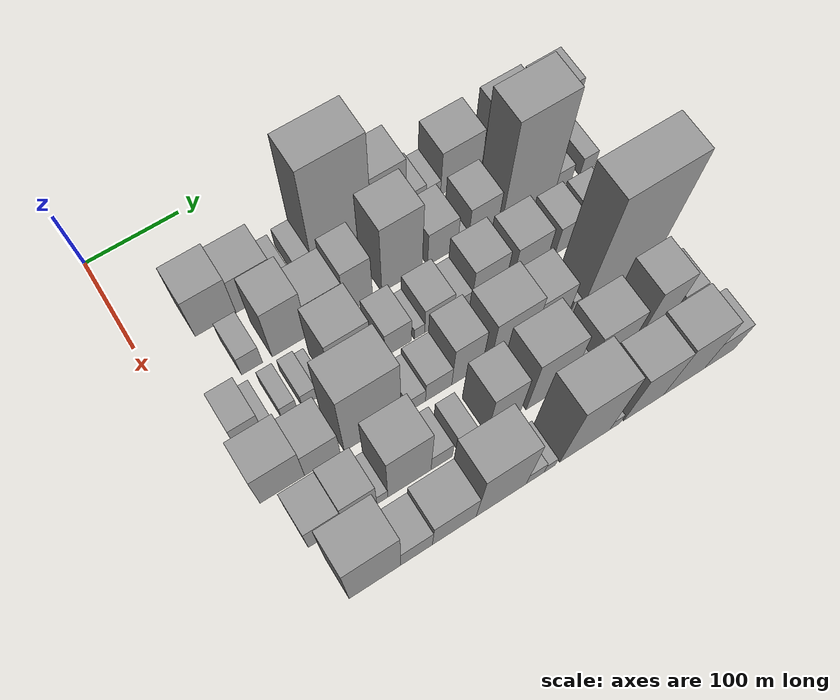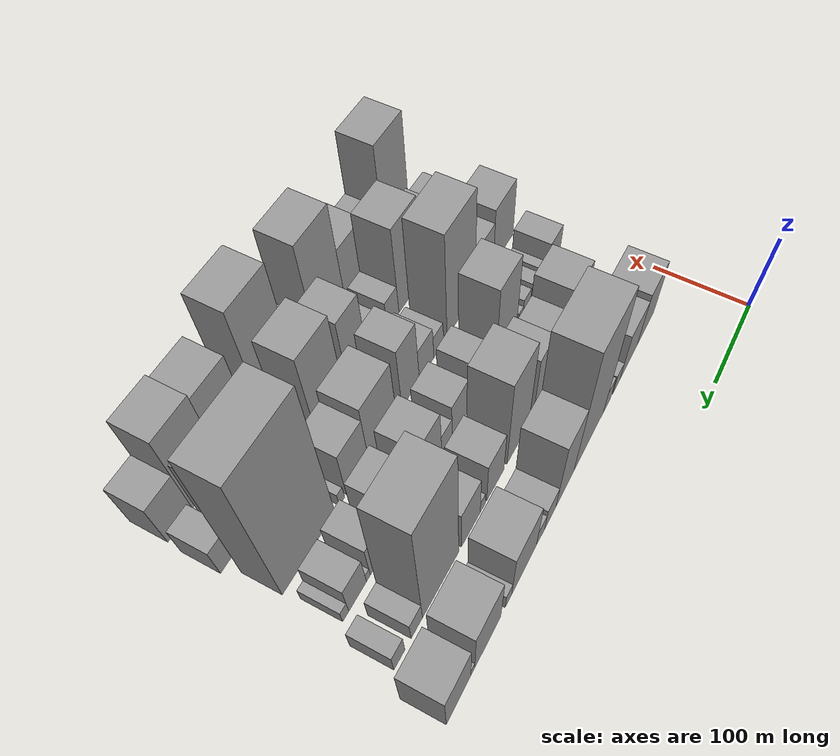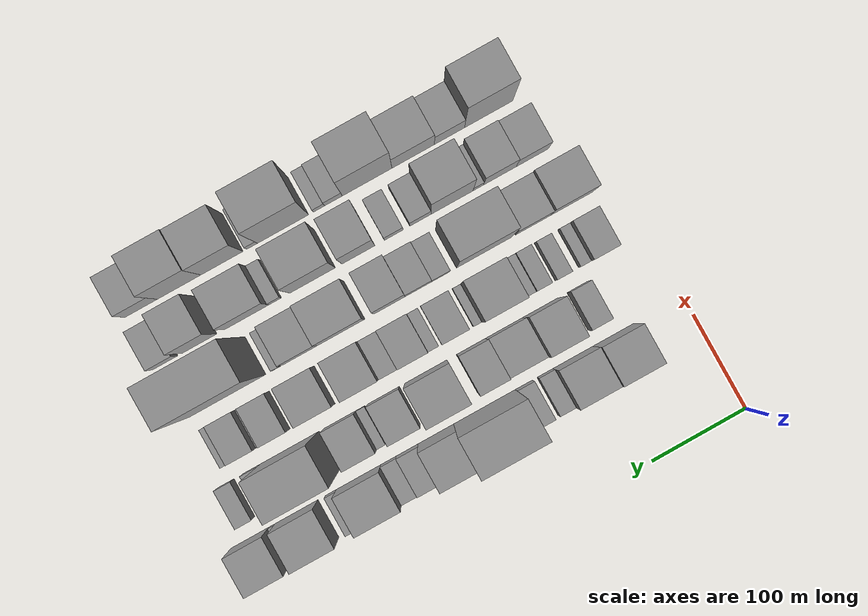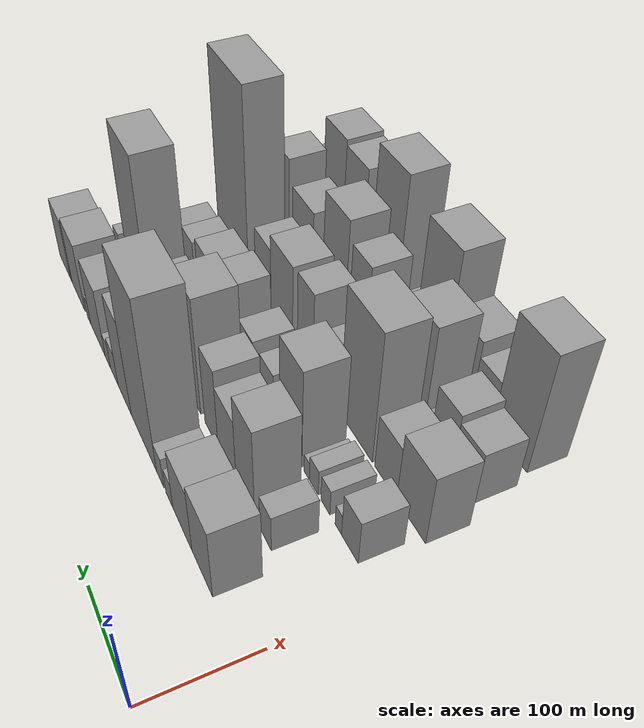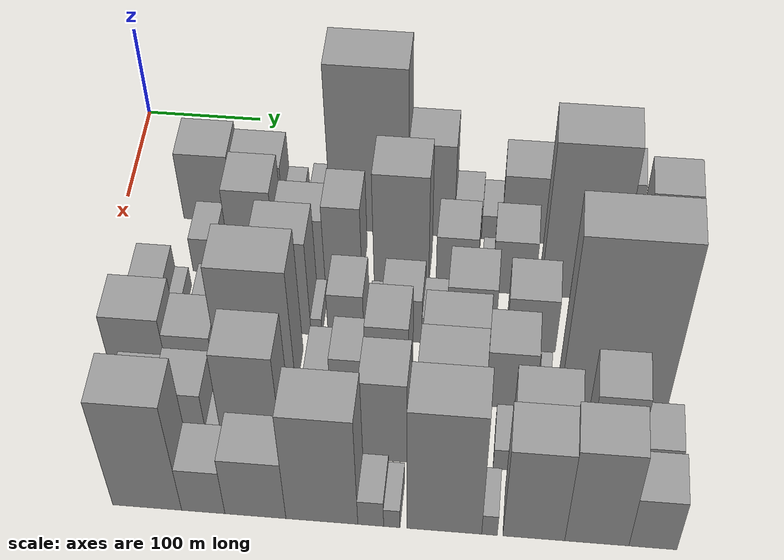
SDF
<sdf version="1.6">
 <world name="default">
  <model name="building_24">
   <static>1</static>
   <pose>100.0000 74.4396 0 0.000000 0.000000 0.000000</pose>
   <link name="link">
    <pose>0 0 40.50 0 0 0</pose>
    <collision name="collision"><geometry><box><size>40.0000 42.9403 81.0000</size></box></geometry></collision>
    <visual name="visual">
     <cast_shadows>0</cast_shadows>
     <geometry><box><size>40.0000 42.9403 81.0000</size></box></geometry>
     <material>
      <script>
       <uri>model://grey_wall/materials/scripts</uri>
       <uri>model://grey_wall/materials/textures</uri>
       <name>vrc/grey_wall</name>
      </script>
     </material>
    </visual>
   </link>
  </model>
  <model name="building_25">
   <static>1</static>
   <pose>100.0000 117.2887 0 0.000000 0.000000 0.000000</pose>
   <link name="link">
    <pose>0 0 36.00 0 0 0</pose>
    <collision name="collision"><geometry><box><size>40.0000 42.7581 72.0000</size></box></geometry></collision>
    <visual name="visual">
     <cast_shadows>0</cast_shadows>
     <geometry><box><size>40.0000 42.7581 72.0000</size></box></geometry>
     <material>
      <script>
       <uri>model://grey_wall/materials/scripts</uri>
       <uri>model://grey_wall/materials/textures</uri>
       <name>vrc/grey_wall</name>
      </script>
     </material>
    </visual>
   </link>
  </model>
  <model name="building_26">
   <static>1</static>
   <pose>100.0000 146.9715 0 0.000000 0.000000 0.000000</pose>
   <link name="link">
    <pose>0 0 15.00 0 0 0</pose>
    <collision name="collision"><geometry><box><size>40.0000 16.6075 30.0000</size></box></geometry></collision>
    <visual name="visual">
     <cast_shadows>0</cast_shadows>
     <geometry><box><size>40.0000 16.6075 30.0000</size></box></geometry>
     <material>
      <script>
       <uri>model://grey_wall/materials/scripts</uri>
       <uri>model://grey_wall/materials/textures</uri>
       <name>vrc/grey_wall</name>
      </script>
     </material>
    </visual>
   </link>
  </model>
  <model name="building_27">
   <static>1</static>
   <pose>100.0000 169.2999 0 0.000000 0.000000 0.000000</pose>
   <link name="link">
    <pose>0 0 18.00 0 0 0</pose>
    <collision name="collision"><geometry><box><size>40.0000 18.0493 36.0000</size></box></geometry></collision>
    <visual name="visual">
     <cast_shadows>0</cast_shadows>
     <geometry><box><size>40.0000 18.0493 36.0000</size></box></geometry>
     <material>
      <script>
       <uri>model://grey_wall/materials/scripts</uri>
       <uri>model://grey_wall/materials/textures</uri>
       <name>vrc/grey_wall</name>
      </script>
     </material>
    </visual>
   </link>
  </model>
  <model name="building_28">
   <static>1</static>
   <pose>100.0000 211.1221 0 0.000000 0.000000 0.000000</pose>
   <link name="link">
    <pose>0 0 96.00 0 0 0</pose>
    <collision name="collision"><geometry><box><size>40.0000 65.5950 192.0000</size></box></geometry></collision>
    <visual name="visual">
     <cast_shadows>0</cast_shadows>
     <geometry><box><size>40.0000 65.5950 192.0000</size></box></geometry>
     <material>
      <script>
       <uri>model://grey_wall/materials/scripts</uri>
       <uri>model://grey_wall/materials/textures</uri>
       <name>vrc/grey_wall</name>
      </script>
     </material>
    </visual>
   </link>
  </model>
  <model name="building_29">
   <static>1</static>
   <pose>100.0000 262.9769 0 0.000000 0.000000 0.000000</pose>
   <link name="link">
    <pose>0 0 55.50 0 0 0</pose>
    <collision name="collision"><geometry><box><size>40.0000 38.1147 111.0000</size></box></geometry></collision>
    <visual name="visual">
     <cast_shadows>0</cast_shadows>
     <geometry><box><size>40.0000 38.1147 111.0000</size></box></geometry>
     <material>
      <script>
       <uri>model://grey_wall/materials/scripts</uri>
       <uri>model://grey_wall/materials/textures</uri>
       <name>vrc/grey_wall</name>
      </script>
     </material>
    </visual>
   </link>
  </model>
  <model name="building_30">
   <static>1</static>
   <pose>100.0000 293.4350 0 0.000000 0.000000 0.000000</pose>
   <link name="link">
    <pose>0 0 19.50 0 0 0</pose>
    <collision name="collision"><geometry><box><size>40.0000 22.8015 39.0000</size></box></geometry></collision>
    <visual name="visual">
     <cast_shadows>0</cast_shadows>
     <geometry><box><size>40.0000 22.8015 39.0000</size></box></geometry>
     <material>
      <script>
       <uri>model://grey_wall/materials/scripts</uri>
       <uri>model://grey_wall/materials/textures</uri>
       <name>vrc/grey_wall</name>
      </script>
     </material>
    </visual>
   </link>
  </model>
  <model name="building_31">
   <static>1</static>
   <pose>100.0000 313.0862 0 0.000000 0.000000 0.000000</pose>
   <link name="link">
    <pose>0 0 15.00 0 0 0</pose>
    <collision name="collision"><geometry><box><size>40.0000 16.5010 30.0000</size></box></geometry></collision>
    <visual name="visual">
     <cast_shadows>0</cast_shadows>
     <geometry><box><size>40.0000 16.5010 30.0000</size></box></geometry>
     <material>
      <script>
       <uri>model://grey_wall/materials/scripts</uri>
       <uri>model://grey_wall/materials/textures</uri>
       <name>vrc/grey_wall</name>
      </script>
     </material>
    </visual>
   </link>
  </model>
  <model name="building_32">
   <static>1</static>
   <pose>100.0000 344.8873 0 0.000000 0.000000 0.000000</pose>
   <link name="link">
    <pose>0 0 40.50 0 0 0</pose>
    <collision name="collision"><geometry><box><size>40.0000 47.1013 81.0000</size></box></geometry></collision>
    <visual name="visual">
     <cast_shadows>0</cast_shadows>
     <geometry><box><size>40.0000 47.1013 81.0000</size></box></geometry>
     <material>
      <script>
       <uri>model://grey_wall/materials/scripts</uri>
       <uri>model://grey_wall/materials/textures</uri>
       <name>vrc/grey_wall</name>
      </script>
     </material>
    </visual>
   </link>
  </model>
  <model name="building_33">
   <static>1</static>
   <pose>100.0000 374.2250 0 0.000000 0.000000 0.000000</pose>
   <link name="link">
    <pose>0 0 13.50 0 0 0</pose>
    <collision name="collision"><geometry><box><size>40.0000 11.5741 27.0000</size></box></geometry></collision>
    <visual name="visual">
     <cast_shadows>0</cast_shadows>
     <geometry><box><size>40.0000 11.5741 27.0000</size></box></geometry>
     <material>
      <script>
       <uri>model://grey_wall/materials/scripts</uri>
       <uri>model://grey_wall/materials/textures</uri>
       <name>vrc/grey_wall</name>
      </script>
     </material>
    </visual>
   </link>
  </model>
  <model name="building_34">
   <static>1</static>
   <pose>100.0000 410.7948 0 0.000000 0.000000 0.000000</pose>
   <link name="link">
    <pose>0 0 40.50 0 0 0</pose>
    <collision name="collision"><geometry><box><size>40.0000 45.5656 81.0000</size></box></geometry></collision>
    <visual name="visual">
     <cast_shadows>0</cast_shadows>
     <geometry><box><size>40.0000 45.5656 81.0000</size></box></geometry>
     <material>
      <script>
       <uri>model://grey_wall/materials/scripts</uri>
       <uri>model://grey_wall/materials/textures</uri>
       <name>vrc/grey_wall</name>
      </script>
     </material>
    </visual>
   </link>
  </model>
  <model name="building_35">
   <static>1</static>
   <pose>100.0000 436.9361 0 0.000000 0.000000 0.000000</pose>
   <link name="link">
    <pose>0 0 7.50 0 0 0</pose>
    <collision name="collision"><geometry><box><size>40.0000 6.7169 15.0000</size></box></geometry></collision>
    <visual name="visual">
     <cast_shadows>0</cast_shadows>
     <geometry><box><size>40.0000 6.7169 15.0000</size></box></geometry>
     <material>
      <script>
       <uri>model://grey_wall/materials/scripts</uri>
       <uri>model://grey_wall/materials/textures</uri>
       <name>vrc/grey_wall</name>
      </script>
     </material>
    </visual>
   </link>
  </model>
  <model name="building_36">
   <static>1</static>
   <pose>100.0000 460.3819 0 0.000000 0.000000 0.000000</pose>
   <link name="link">
    <pose>0 0 36.00 0 0 0</pose>
    <collision name="collision"><geometry><box><size>40.0000 40.1748 72.0000</size></box></geometry></collision>
    <visual name="visual">
     <cast_shadows>0</cast_shadows>
     <geometry><box><size>40.0000 40.1748 72.0000</size></box></geometry>
     <material>
      <script>
       <uri>model://grey_wall/materials/scripts</uri>
       <uri>model://grey_wall/materials/textures</uri>
       <name>vrc/grey_wall</name>
      </script>
     </material>
    </visual>
   </link>
  </model>
  <model name="building_74">
   <static>1</static>
   <pose>155.0000 81.6243 0 0.000000 0.000000 0.000000</pose>
   <link name="link">
    <pose>0 0 21.00 0 0 0</pose>
    <collision name="collision"><geometry><box><size>40.0000 21.9709 42.0000</size></box></geometry></collision>
    <visual name="visual">
     <cast_shadows>0</cast_shadows>
     <geometry><box><size>40.0000 21.9709 42.0000</size></box></geometry>
     <material>
      <script>
       <uri>model://grey_wall/materials/scripts</uri>
       <uri>model://grey_wall/materials/textures</uri>
       <name>vrc/grey_wall</name>
      </script>
     </material>
    </visual>
   </link>
  </model>
  <model name="building_75">
   <static>1</static>
   <pose>155.0000 121.5219 0 0.000000 0.000000 0.000000</pose>
   <link name="link">
    <pose>0 0 52.50 0 0 0</pose>
    <collision name="collision"><geometry><box><size>40.0000 37.8243 105.0000</size></box></geometry></collision>
    <visual name="visual">
     <cast_shadows>0</cast_shadows>
     <geometry><box><size>40.0000 37.8243 105.0000</size></box></geometry>
     <material>
      <script>
       <uri>model://grey_wall/materials/scripts</uri>
       <uri>model://grey_wall/materials/textures</uri>
       <name>vrc/grey_wall</name>
      </script>
     </material>
    </visual>
   </link>
  </model>
  <model name="building_76">
   <static>1</static>
   <pose>155.0000 160.1553 0 0.000000 0.000000 0.000000</pose>
   <link name="link">
    <pose>0 0 37.50 0 0 0</pose>
    <collision name="collision"><geometry><box><size>40.0000 39.4426 75.0000</size></box></geometry></collision>
    <visual name="visual">
     <cast_shadows>0</cast_shadows>
     <geometry><box><size>40.0000 39.4426 75.0000</size></box></geometry>
     <material>
      <script>
       <uri>model://grey_wall/materials/scripts</uri>
       <uri>model://grey_wall/materials/textures</uri>
       <name>vrc/grey_wall</name>
      </script>
     </material>
    </visual>
   </link>
  </model>
  <model name="building_77">
   <static>1</static>
   <pose>155.0000 195.1086 0 0.000000 0.000000 0.000000</pose>
   <link name="link">
    <pose>0 0 46.50 0 0 0</pose>
    <collision name="collision"><geometry><box><size>40.0000 30.4640 93.0000</size></box></geometry></collision>
    <visual name="visual">
     <cast_shadows>0</cast_shadows>
     <geometry><box><size>40.0000 30.4640 93.0000</size></box></geometry>
     <material>
      <script>
       <uri>model://grey_wall/materials/scripts</uri>
       <uri>model://grey_wall/materials/textures</uri>
       <name>vrc/grey_wall</name>
      </script>
     </material>
    </visual>
   </link>
  </model>
  <model name="building_78">
   <static>1</static>
   <pose>155.0000 242.6179 0 0.000000 0.000000 0.000000</pose>
   <link name="link">
    <pose>0 0 67.50 0 0 0</pose>
    <collision name="collision"><geometry><box><size>40.0000 44.5544 135.0000</size></box></geometry></collision>
    <visual name="visual">
     <cast_shadows>0</cast_shadows>
     <geometry><box><size>40.0000 44.5544 135.0000</size></box></geometry>
     <material>
      <script>
       <uri>model://grey_wall/materials/scripts</uri>
       <uri>model://grey_wall/materials/textures</uri>
       <name>vrc/grey_wall</name>
      </script>
     </material>
    </visual>
   </link>
  </model>
  <model name="building_79">
   <static>1</static>
   <pose>155.0000 287.6054 0 0.000000 0.000000 0.000000</pose>
   <link name="link">
    <pose>0 0 33.00 0 0 0</pose>
    <collision name="collision"><geometry><box><size>40.0000 33.4206 66.0000</size></box></geometry></collision>
    <visual name="visual">
     <cast_shadows>0</cast_shadows>
     <geometry><box><size>40.0000 33.4206 66.0000</size></box></geometry>
     <material>
      <script>
       <uri>model://grey_wall/materials/scripts</uri>
       <uri>model://grey_wall/materials/textures</uri>
       <name>vrc/grey_wall</name>
      </script>
     </material>
    </visual>
   </link>
  </model>
  <model name="building_80">
   <static>1</static>
   <pose>155.0000 311.9925 0 0.000000 0.000000 0.000000</pose>
   <link name="link">
    <pose>0 0 10.50 0 0 0</pose>
    <collision name="collision"><geometry><box><size>40.0000 9.3537 21.0000</size></box></geometry></collision>
    <visual name="visual">
     <cast_shadows>0</cast_shadows>
     <geometry><box><size>40.0000 9.3537 21.0000</size></box></geometry>
     <material>
      <script>
       <uri>model://grey_wall/materials/scripts</uri>
       <uri>model://grey_wall/materials/textures</uri>
       <name>vrc/grey_wall</name>
      </script>
     </material>
    </visual>
   </link>
  </model>
  <model name="building_81">
   <static>1</static>
   <pose>155.0000 333.8412 0 0.000000 0.000000 0.000000</pose>
   <link name="link">
    <pose>0 0 33.00 0 0 0</pose>
    <collision name="collision"><geometry><box><size>40.0000 34.3437 66.0000</size></box></geometry></collision>
    <visual name="visual">
     <cast_shadows>0</cast_shadows>
     <geometry><box><size>40.0000 34.3437 66.0000</size></box></geometry>
     <material>
      <script>
       <uri>model://grey_wall/materials/scripts</uri>
       <uri>model://grey_wall/materials/textures</uri>
       <name>vrc/grey_wall</name>
      </script>
     </material>
    </visual>
   </link>
  </model>
  <model name="building_82">
   <static>1</static>
   <pose>155.0000 387.0578 0 0.000000 0.000000 0.000000</pose>
   <link name="link">
    <pose>0 0 91.50 0 0 0</pose>
    <collision name="collision"><geometry><box><size>40.0000 62.0895 183.0000</size></box></geometry></collision>
    <visual name="visual">
     <cast_shadows>0</cast_shadows>
     <geometry><box><size>40.0000 62.0895 183.0000</size></box></geometry>
     <material>
      <script>
       <uri>model://grey_wall/materials/scripts</uri>
       <uri>model://grey_wall/materials/textures</uri>
       <name>vrc/grey_wall</name>
      </script>
     </material>
    </visual>
   </link>
  </model>
  <model name="building_83">
   <static>1</static>
   <pose>155.0000 427.3714 0 0.000000 0.000000 0.000000</pose>
   <link name="link">
    <pose>0 0 16.50 0 0 0</pose>
    <collision name="collision"><geometry><box><size>40.0000 18.5377 33.0000</size></box></geometry></collision>
    <visual name="visual">
     <cast_shadows>0</cast_shadows>
     <geometry><box><size>40.0000 18.5377 33.0000</size></box></geometry>
     <material>
      <script>
       <uri>model://grey_wall/materials/scripts</uri>
       <uri>model://grey_wall/materials/textures</uri>
       <name>vrc/grey_wall</name>
      </script>
     </material>
    </visual>
   </link>
  </model>
  <model name="building_84">
   <static>1</static>
   <pose>155.0000 455.3197 0 0.000000 0.000000 0.000000</pose>
   <link name="link">
    <pose>0 0 16.50 0 0 0</pose>
    <collision name="collision"><geometry><box><size>40.0000 17.3588 33.0000</size></box></geometry></collision>
    <visual name="visual">
     <cast_shadows>0</cast_shadows>
     <geometry><box><size>40.0000 17.3588 33.0000</size></box></geometry>
     <material>
      <script>
       <uri>model://grey_wall/materials/scripts</uri>
       <uri>model://grey_wall/materials/textures</uri>
       <name>vrc/grey_wall</name>
      </script>
     </material>
    </visual>
   </link>
  </model>
  <model name="building_124">
   <static>1</static>
   <pose>210.0000 47.0669 0 0.000000 0.000000 0.000000</pose>
   <link name="link">
    <pose>0 0 25.50 0 0 0</pose>
    <collision name="collision"><geometry><box><size>40.0000 27.5567 51.0000</size></box></geometry></collision>
    <visual name="visual">
     <cast_shadows>0</cast_shadows>
     <geometry><box><size>40.0000 27.5567 51.0000</size></box></geometry>
     <material>
      <script>
       <uri>model://grey_wall/materials/scripts</uri>
       <uri>model://grey_wall/materials/textures</uri>
       <name>vrc/grey_wall</name>
      </script>
     </material>
    </visual>
   </link>
  </model>
  <model name="building_125">
   <static>1</static>
   <pose>210.0000 66.3693 0 0.000000 0.000000 0.000000</pose>
   <link name="link">
    <pose>0 0 12.00 0 0 0</pose>
    <collision name="collision"><geometry><box><size>40.0000 11.0480 24.0000</size></box></geometry></collision>
    <visual name="visual">
     <cast_shadows>0</cast_shadows>
     <geometry><box><size>40.0000 11.0480 24.0000</size></box></geometry>
     <material>
      <script>
       <uri>model://grey_wall/materials/scripts</uri>
       <uri>model://grey_wall/materials/textures</uri>
       <name>vrc/grey_wall</name>
      </script>
     </material>
    </visual>
   </link>
  </model>
  <model name="building_126">
   <static>1</static>
   <pose>210.0000 88.8799 0 0.000000 0.000000 0.000000</pose>
   <link name="link">
    <pose>0 0 15.00 0 0 0</pose>
    <collision name="collision"><geometry><box><size>40.0000 15.9732 30.0000</size></box></geometry></collision>
    <visual name="visual">
     <cast_shadows>0</cast_shadows>
     <geometry><box><size>40.0000 15.9732 30.0000</size></box></geometry>
     <material>
      <script>
       <uri>model://grey_wall/materials/scripts</uri>
       <uri>model://grey_wall/materials/textures</uri>
       <name>vrc/grey_wall</name>
      </script>
     </material>
    </visual>
   </link>
  </model>
  <model name="building_127">
   <static>1</static>
   <pose>210.0000 109.9628 0 0.000000 0.000000 0.000000</pose>
   <link name="link">
    <pose>0 0 15.00 0 0 0</pose>
    <collision name="collision"><geometry><box><size>40.0000 16.1927 30.0000</size></box></geometry></collision>
    <visual name="visual">
     <cast_shadows>0</cast_shadows>
     <geometry><box><size>40.0000 16.1927 30.0000</size></box></geometry>
     <material>
      <script>
       <uri>model://grey_wall/materials/scripts</uri>
       <uri>model://grey_wall/materials/textures</uri>
       <name>vrc/grey_wall</name>
      </script>
     </material>
    </visual>
   </link>
  </model>
  <model name="building_128">
   <static>1</static>
   <pose>210.0000 123.2397 0 0.000000 0.000000 0.000000</pose>
   <link name="link">
    <pose>0 0 10.50 0 0 0</pose>
    <collision name="collision"><geometry><box><size>40.0000 10.3610 21.0000</size></box></geometry></collision>
    <visual name="visual">
     <cast_shadows>0</cast_shadows>
     <geometry><box><size>40.0000 10.3610 21.0000</size></box></geometry>
     <material>
      <script>
       <uri>model://grey_wall/materials/scripts</uri>
       <uri>model://grey_wall/materials/textures</uri>
       <name>vrc/grey_wall</name>
      </script>
     </material>
    </visual>
   </link>
  </model>
  <model name="building_129">
   <static>1</static>
   <pose>210.0000 153.9851 0 0.000000 0.000000 0.000000</pose>
   <link name="link">
    <pose>0 0 57.00 0 0 0</pose>
    <collision name="collision"><geometry><box><size>40.0000 43.1299 114.0000</size></box></geometry></collision>
    <visual name="visual">
     <cast_shadows>0</cast_shadows>
     <geometry><box><size>40.0000 43.1299 114.0000</size></box></geometry>
     <material>
      <script>
       <uri>model://grey_wall/materials/scripts</uri>
       <uri>model://grey_wall/materials/textures</uri>
       <name>vrc/grey_wall</name>
      </script>
     </material>
    </visual>
   </link>
  </model>
  <model name="building_130">
   <static>1</static>
   <pose>210.0000 179.8836 0 0.000000 0.000000 0.000000</pose>
   <link name="link">
    <pose>0 0 10.50 0 0 0</pose>
    <collision name="collision"><geometry><box><size>40.0000 8.6671 21.0000</size></box></geometry></collision>
    <visual name="visual">
     <cast_shadows>0</cast_shadows>
     <geometry><box><size>40.0000 8.6671 21.0000</size></box></geometry>
     <material>
      <script>
       <uri>model://grey_wall/materials/scripts</uri>
       <uri>model://grey_wall/materials/textures</uri>
       <name>vrc/grey_wall</name>
      </script>
     </material>
    </visual>
   </link>
  </model>
  <model name="building_131">
   <static>1</static>
   <pose>210.0000 203.4865 0 0.000000 0.000000 0.000000</pose>
   <link name="link">
    <pose>0 0 27.00 0 0 0</pose>
    <collision name="collision"><geometry><box><size>40.0000 28.5387 54.0000</size></box></geometry></collision>
    <visual name="visual">
     <cast_shadows>0</cast_shadows>
     <geometry><box><size>40.0000 28.5387 54.0000</size></box></geometry>
     <material>
      <script>
       <uri>model://grey_wall/materials/scripts</uri>
       <uri>model://grey_wall/materials/textures</uri>
       <name>vrc/grey_wall</name>
      </script>
     </material>
    </visual>
   </link>
  </model>
  <model name="building_132">
   <static>1</static>
   <pose>210.0000 226.4200 0 0.000000 0.000000 0.000000</pose>
   <link name="link">
    <pose>0 0 12.00 0 0 0</pose>
    <collision name="collision"><geometry><box><size>40.0000 11.3285 24.0000</size></box></geometry></collision>
    <visual name="visual">
     <cast_shadows>0</cast_shadows>
     <geometry><box><size>40.0000 11.3285 24.0000</size></box></geometry>
     <material>
      <script>
       <uri>model://grey_wall/materials/scripts</uri>
       <uri>model://grey_wall/materials/textures</uri>
       <name>vrc/grey_wall</name>
      </script>
     </material>
    </visual>
   </link>
  </model>
  <model name="building_133">
   <static>1</static>
   <pose>210.0000 247.9528 0 0.000000 0.000000 0.000000</pose>
   <link name="link">
    <pose>0 0 27.00 0 0 0</pose>
    <collision name="collision"><geometry><box><size>40.0000 31.7370 54.0000</size></box></geometry></collision>
    <visual name="visual">
     <cast_shadows>0</cast_shadows>
     <geometry><box><size>40.0000 31.7370 54.0000</size></box></geometry>
     <material>
      <script>
       <uri>model://grey_wall/materials/scripts</uri>
       <uri>model://grey_wall/materials/textures</uri>
       <name>vrc/grey_wall</name>
      </script>
     </material>
    </visual>
   </link>
  </model>
  <model name="building_134">
   <static>1</static>
   <pose>210.0000 273.6645 0 0.000000 0.000000 0.000000</pose>
   <link name="link">
    <pose>0 0 16.50 0 0 0</pose>
    <collision name="collision"><geometry><box><size>40.0000 19.6864 33.0000</size></box></geometry></collision>
    <visual name="visual">
     <cast_shadows>0</cast_shadows>
     <geometry><box><size>40.0000 19.6864 33.0000</size></box></geometry>
     <material>
      <script>
       <uri>model://grey_wall/materials/scripts</uri>
       <uri>model://grey_wall/materials/textures</uri>
       <name>vrc/grey_wall</name>
      </script>
     </material>
    </visual>
   </link>
  </model>
  <model name="building_135">
   <static>1</static>
   <pose>210.0000 302.5723 0 0.000000 0.000000 0.000000</pose>
   <link name="link">
    <pose>0 0 37.50 0 0 0</pose>
    <collision name="collision"><geometry><box><size>40.0000 38.1293 75.0000</size></box></geometry></collision>
    <visual name="visual">
     <cast_shadows>0</cast_shadows>
     <geometry><box><size>40.0000 38.1293 75.0000</size></box></geometry>
     <material>
      <script>
       <uri>model://grey_wall/materials/scripts</uri>
       <uri>model://grey_wall/materials/textures</uri>
       <name>vrc/grey_wall</name>
      </script>
     </material>
    </visual>
   </link>
  </model>
  <model name="building_136">
   <static>1</static>
   <pose>210.0000 350.0573 0 0.000000 0.000000 0.000000</pose>
   <link name="link">
    <pose>0 0 33.00 0 0 0</pose>
    <collision name="collision"><geometry><box><size>40.0000 38.8407 66.0000</size></box></geometry></collision>
    <visual name="visual">
     <cast_shadows>0</cast_shadows>
     <geometry><box><size>40.0000 38.8407 66.0000</size></box></geometry>
     <material>
      <script>
       <uri>model://grey_wall/materials/scripts</uri>
       <uri>model://grey_wall/materials/textures</uri>
       <name>vrc/grey_wall</name>
      </script>
     </material>
    </visual>
   </link>
  </model>
  <model name="building_137">
   <static>1</static>
   <pose>210.0000 392.8397 0 0.000000 0.000000 0.000000</pose>
   <link name="link">
    <pose>0 0 27.00 0 0 0</pose>
    <collision name="collision"><geometry><box><size>40.0000 28.7243 54.0000</size></box></geometry></collision>
    <visual name="visual">
     <cast_shadows>0</cast_shadows>
     <geometry><box><size>40.0000 28.7243 54.0000</size></box></geometry>
     <material>
      <script>
       <uri>model://grey_wall/materials/scripts</uri>
       <uri>model://grey_wall/materials/textures</uri>
       <name>vrc/grey_wall</name>
      </script>
     </material>
    </visual>
   </link>
  </model>
  <model name="building_138">
   <static>1</static>
   <pose>210.0000 410.2564 0 0.000000 0.000000 0.000000</pose>
   <link name="link">
    <pose>0 0 7.50 0 0 0</pose>
    <collision name="collision"><geometry><box><size>40.0000 6.1091 15.0000</size></box></geometry></collision>
    <visual name="visual">
     <cast_shadows>0</cast_shadows>
     <geometry><box><size>40.0000 6.1091 15.0000</size></box></geometry>
     <material>
      <script>
       <uri>model://grey_wall/materials/scripts</uri>
       <uri>model://grey_wall/materials/textures</uri>
       <name>vrc/grey_wall</name>
      </script>
     </material>
    </visual>
   </link>
  </model>
  <model name="building_139">
   <static>1</static>
   <pose>210.0000 427.1745 0 0.000000 0.000000 0.000000</pose>
   <link name="link">
    <pose>0 0 24.00 0 0 0</pose>
    <collision name="collision"><geometry><box><size>40.0000 27.7270 48.0000</size></box></geometry></collision>
    <visual name="visual">
     <cast_shadows>0</cast_shadows>
     <geometry><box><size>40.0000 27.7270 48.0000</size></box></geometry>
     <material>
      <script>
       <uri>model://grey_wall/materials/scripts</uri>
       <uri>model://grey_wall/materials/textures</uri>
       <name>vrc/grey_wall</name>
      </script>
     </material>
    </visual>
   </link>
  </model>
  <model name="building_140">
   <static>1</static>
   <pose>210.0000 445.7122 0 0.000000 0.000000 0.000000</pose>
   <link name="link">
    <pose>0 0 10.50 0 0 0</pose>
    <collision name="collision"><geometry><box><size>40.0000 9.3484 21.0000</size></box></geometry></collision>
    <visual name="visual">
     <cast_shadows>0</cast_shadows>
     <geometry><box><size>40.0000 9.3484 21.0000</size></box></geometry>
     <material>
      <script>
       <uri>model://grey_wall/materials/scripts</uri>
       <uri>model://grey_wall/materials/textures</uri>
       <name>vrc/grey_wall</name>
      </script>
     </material>
    </visual>
   </link>
  </model>
  <model name="building_180">
   <static>1</static>
   <pose>265.0000 49.3287 0 0.000000 0.000000 0.000000</pose>
   <link name="link">
    <pose>0 0 40.50 0 0 0</pose>
    <collision name="collision"><geometry><box><size>40.0000 45.0041 81.0000</size></box></geometry></collision>
    <visual name="visual">
     <cast_shadows>0</cast_shadows>
     <geometry><box><size>40.0000 45.0041 81.0000</size></box></geometry>
     <material>
      <script>
       <uri>model://grey_wall/materials/scripts</uri>
       <uri>model://grey_wall/materials/textures</uri>
       <name>vrc/grey_wall</name>
      </script>
     </material>
    </visual>
   </link>
  </model>
  <model name="building_181">
   <static>1</static>
   <pose>265.0000 90.1085 0 0.000000 0.000000 0.000000</pose>
   <link name="link">
    <pose>0 0 31.50 0 0 0</pose>
    <collision name="collision"><geometry><box><size>40.0000 36.5555 63.0000</size></box></geometry></collision>
    <visual name="visual">
     <cast_shadows>0</cast_shadows>
     <geometry><box><size>40.0000 36.5555 63.0000</size></box></geometry>
     <material>
      <script>
       <uri>model://grey_wall/materials/scripts</uri>
       <uri>model://grey_wall/materials/textures</uri>
       <name>vrc/grey_wall</name>
      </script>
     </material>
    </visual>
   </link>
  </model>
  <model name="building_182">
   <static>1</static>
   <pose>265.0000 141.7088 0 0.000000 0.000000 0.000000</pose>
   <link name="link">
    <pose>0 0 75.00 0 0 0</pose>
    <collision name="collision"><geometry><box><size>40.0000 58.6450 150.0000</size></box></geometry></collision>
    <visual name="visual">
     <cast_shadows>0</cast_shadows>
     <geometry><box><size>40.0000 58.6450 150.0000</size></box></geometry>
     <material>
      <script>
       <uri>model://grey_wall/materials/scripts</uri>
       <uri>model://grey_wall/materials/textures</uri>
       <name>vrc/grey_wall</name>
      </script>
     </material>
    </visual>
   </link>
  </model>
  <model name="building_183">
   <static>1</static>
   <pose>265.0000 187.7204 0 0.000000 0.000000 0.000000</pose>
   <link name="link">
    <pose>0 0 16.50 0 0 0</pose>
    <collision name="collision"><geometry><box><size>40.0000 19.3781 33.0000</size></box></geometry></collision>
    <visual name="visual">
     <cast_shadows>0</cast_shadows>
     <geometry><box><size>40.0000 19.3781 33.0000</size></box></geometry>
     <material>
      <script>
       <uri>model://grey_wall/materials/scripts</uri>
       <uri>model://grey_wall/materials/textures</uri>
       <name>vrc/grey_wall</name>
      </script>
     </material>
    </visual>
   </link>
  </model>
  <model name="building_184">
   <static>1</static>
   <pose>265.0000 211.4178 0 0.000000 0.000000 0.000000</pose>
   <link name="link">
    <pose>0 0 24.00 0 0 0</pose>
    <collision name="collision"><geometry><box><size>40.0000 28.0167 48.0000</size></box></geometry></collision>
    <visual name="visual">
     <cast_shadows>0</cast_shadows>
     <geometry><box><size>40.0000 28.0167 48.0000</size></box></geometry>
     <material>
      <script>
       <uri>model://grey_wall/materials/scripts</uri>
       <uri>model://grey_wall/materials/textures</uri>
       <name>vrc/grey_wall</name>
      </script>
     </material>
    </visual>
   </link>
  </model>
  <model name="building_185">
   <static>1</static>
   <pose>265.0000 241.8410 0 0.000000 0.000000 0.000000</pose>
   <link name="link">
    <pose>0 0 46.50 0 0 0</pose>
    <collision name="collision"><geometry><box><size>40.0000 32.8297 93.0000</size></box></geometry></collision>
    <visual name="visual">
     <cast_shadows>0</cast_shadows>
     <geometry><box><size>40.0000 32.8297 93.0000</size></box></geometry>
     <material>
      <script>
       <uri>model://grey_wall/materials/scripts</uri>
       <uri>model://grey_wall/materials/textures</uri>
       <name>vrc/grey_wall</name>
      </script>
     </material>
    </visual>
   </link>
  </model>
  <model name="building_186">
   <static>1</static>
   <pose>265.0000 292.9318 0 0.000000 0.000000 0.000000</pose>
   <link name="link">
    <pose>0 0 45.00 0 0 0</pose>
    <collision name="collision"><geometry><box><size>40.0000 49.3520 90.0000</size></box></geometry></collision>
    <visual name="visual">
     <cast_shadows>0</cast_shadows>
     <geometry><box><size>40.0000 49.3520 90.0000</size></box></geometry>
     <material>
      <script>
       <uri>model://grey_wall/materials/scripts</uri>
       <uri>model://grey_wall/materials/textures</uri>
       <name>vrc/grey_wall</name>
      </script>
     </material>
    </visual>
   </link>
  </model>
  <model name="building_187">
   <static>1</static>
   <pose>265.0000 336.3227 0 0.000000 0.000000 0.000000</pose>
   <link name="link">
    <pose>0 0 36.00 0 0 0</pose>
    <collision name="collision"><geometry><box><size>40.0000 37.4298 72.0000</size></box></geometry></collision>
    <visual name="visual">
     <cast_shadows>0</cast_shadows>
     <geometry><box><size>40.0000 37.4298 72.0000</size></box></geometry>
     <material>
      <script>
       <uri>model://grey_wall/materials/scripts</uri>
       <uri>model://grey_wall/materials/textures</uri>
       <name>vrc/grey_wall</name>
      </script>
     </material>
    </visual>
   </link>
  </model>
  <model name="building_188">
   <static>1</static>
   <pose>265.0000 362.3041 0 0.000000 0.000000 0.000000</pose>
   <link name="link">
    <pose>0 0 10.50 0 0 0</pose>
    <collision name="collision"><geometry><box><size>40.0000 8.5330 21.0000</size></box></geometry></collision>
    <visual name="visual">
     <cast_shadows>0</cast_shadows>
     <geometry><box><size>40.0000 8.5330 21.0000</size></box></geometry>
     <material>
      <script>
       <uri>model://grey_wall/materials/scripts</uri>
       <uri>model://grey_wall/materials/textures</uri>
       <name>vrc/grey_wall</name>
      </script>
     </material>
    </visual>
   </link>
  </model>
  <model name="building_189">
   <static>1</static>
   <pose>265.0000 414.0832 0 0.000000 0.000000 0.000000</pose>
   <link name="link">
    <pose>0 0 106.50 0 0 0</pose>
    <collision name="collision"><geometry><box><size>40.0000 81.0252 213.0000</size></box></geometry></collision>
    <visual name="visual">
     <cast_shadows>0</cast_shadows>
     <geometry><box><size>40.0000 81.0252 213.0000</size></box></geometry>
     <material>
      <script>
       <uri>model://grey_wall/materials/scripts</uri>
       <uri>model://grey_wall/materials/textures</uri>
       <name>vrc/grey_wall</name>
      </script>
     </material>
    </visual>
   </link>
  </model>
  <model name="building_227">
   <static>1</static>
   <pose>320.0000 59.9531 0 0.000000 0.000000 0.000000</pose>
   <link name="link">
    <pose>0 0 30.00 0 0 0</pose>
    <collision name="collision"><geometry><box><size>40.0000 34.3044 60.0000</size></box></geometry></collision>
    <visual name="visual">
     <cast_shadows>0</cast_shadows>
     <geometry><box><size>40.0000 34.3044 60.0000</size></box></geometry>
     <material>
      <script>
       <uri>model://grey_wall/materials/scripts</uri>
       <uri>model://grey_wall/materials/textures</uri>
       <name>vrc/grey_wall</name>
      </script>
     </material>
    </visual>
   </link>
  </model>
  <model name="building_228">
   <static>1</static>
   <pose>320.0000 94.3920 0 0.000000 0.000000 0.000000</pose>
   <link name="link">
    <pose>0 0 34.50 0 0 0</pose>
    <collision name="collision"><geometry><box><size>40.0000 34.5735 69.0000</size></box></geometry></collision>
    <visual name="visual">
     <cast_shadows>0</cast_shadows>
     <geometry><box><size>40.0000 34.5735 69.0000</size></box></geometry>
     <material>
      <script>
       <uri>model://grey_wall/materials/scripts</uri>
       <uri>model://grey_wall/materials/textures</uri>
       <name>vrc/grey_wall</name>
      </script>
     </material>
    </visual>
   </link>
  </model>
  <model name="building_229">
   <static>1</static>
   <pose>320.0000 117.3488 0 0.000000 0.000000 0.000000</pose>
   <link name="link">
    <pose>0 0 13.50 0 0 0</pose>
    <collision name="collision"><geometry><box><size>40.0000 11.3402 27.0000</size></box></geometry></collision>
    <visual name="visual">
     <cast_shadows>0</cast_shadows>
     <geometry><box><size>40.0000 11.3402 27.0000</size></box></geometry>
     <material>
      <script>
       <uri>model://grey_wall/materials/scripts</uri>
       <uri>model://grey_wall/materials/textures</uri>
       <name>vrc/grey_wall</name>
      </script>
     </material>
    </visual>
   </link>
  </model>
  <model name="building_230">
   <static>1</static>
   <pose>320.0000 145.2753 0 0.000000 0.000000 0.000000</pose>
   <link name="link">
    <pose>0 0 61.50 0 0 0</pose>
    <collision name="collision"><geometry><box><size>40.0000 44.5128 123.0000</size></box></geometry></collision>
    <visual name="visual">
     <cast_shadows>0</cast_shadows>
     <geometry><box><size>40.0000 44.5128 123.0000</size></box></geometry>
     <material>
      <script>
       <uri>model://grey_wall/materials/scripts</uri>
       <uri>model://grey_wall/materials/textures</uri>
       <name>vrc/grey_wall</name>
      </script>
     </material>
    </visual>
   </link>
  </model>
  <model name="building_231">
   <static>1</static>
   <pose>320.0000 178.7404 0 0.000000 0.000000 0.000000</pose>
   <link name="link">
    <pose>0 0 21.00 0 0 0</pose>
    <collision name="collision"><geometry><box><size>40.0000 22.4174 42.0000</size></box></geometry></collision>
    <visual name="visual">
     <cast_shadows>0</cast_shadows>
     <geometry><box><size>40.0000 22.4174 42.0000</size></box></geometry>
     <material>
      <script>
       <uri>model://grey_wall/materials/scripts</uri>
       <uri>model://grey_wall/materials/textures</uri>
       <name>vrc/grey_wall</name>
      </script>
     </material>
    </visual>
   </link>
  </model>
  <model name="building_232">
   <static>1</static>
   <pose>320.0000 206.9318 0 0.000000 0.000000 0.000000</pose>
   <link name="link">
    <pose>0 0 18.00 0 0 0</pose>
    <collision name="collision"><geometry><box><size>40.0000 19.9654 36.0000</size></box></geometry></collision>
    <visual name="visual">
     <cast_shadows>0</cast_shadows>
     <geometry><box><size>40.0000 19.9654 36.0000</size></box></geometry>
     <material>
      <script>
       <uri>model://grey_wall/materials/scripts</uri>
       <uri>model://grey_wall/materials/textures</uri>
       <name>vrc/grey_wall</name>
      </script>
     </material>
    </visual>
   </link>
  </model>
  <model name="building_233">
   <static>1</static>
   <pose>320.0000 244.4183 0 0.000000 0.000000 0.000000</pose>
   <link name="link">
    <pose>0 0 51.00 0 0 0</pose>
    <collision name="collision"><geometry><box><size>40.0000 35.0077 102.0000</size></box></geometry></collision>
    <visual name="visual">
     <cast_shadows>0</cast_shadows>
     <geometry><box><size>40.0000 35.0077 102.0000</size></box></geometry>
     <material>
      <script>
       <uri>model://grey_wall/materials/scripts</uri>
       <uri>model://grey_wall/materials/textures</uri>
       <name>vrc/grey_wall</name>
      </script>
     </material>
    </visual>
   </link>
  </model>
  <model name="building_234">
   <static>1</static>
   <pose>320.0000 293.0955 0 0.000000 0.000000 0.000000</pose>
   <link name="link">
    <pose>0 0 61.50 0 0 0</pose>
    <collision name="collision"><geometry><box><size>40.0000 48.3465 123.0000</size></box></geometry></collision>
    <visual name="visual">
     <cast_shadows>0</cast_shadows>
     <geometry><box><size>40.0000 48.3465 123.0000</size></box></geometry>
     <material>
      <script>
       <uri>model://grey_wall/materials/scripts</uri>
       <uri>model://grey_wall/materials/textures</uri>
       <name>vrc/grey_wall</name>
      </script>
     </material>
    </visual>
   </link>
  </model>
  <model name="building_235">
   <static>1</static>
   <pose>320.0000 332.7790 0 0.000000 0.000000 0.000000</pose>
   <link name="link">
    <pose>0 0 13.50 0 0 0</pose>
    <collision name="collision"><geometry><box><size>40.0000 13.0205 27.0000</size></box></geometry></collision>
    <visual name="visual">
     <cast_shadows>0</cast_shadows>
     <geometry><box><size>40.0000 13.0205 27.0000</size></box></geometry>
     <material>
      <script>
       <uri>model://grey_wall/materials/scripts</uri>
       <uri>model://grey_wall/materials/textures</uri>
       <name>vrc/grey_wall</name>
      </script>
     </material>
    </visual>
   </link>
  </model>
  <model name="building_236">
   <static>1</static>
   <pose>320.0000 363.0589 0 0.000000 0.000000 0.000000</pose>
   <link name="link">
    <pose>0 0 40.50 0 0 0</pose>
    <collision name="collision"><geometry><box><size>40.0000 47.5394 81.0000</size></box></geometry></collision>
    <visual name="visual">
     <cast_shadows>0</cast_shadows>
     <geometry><box><size>40.0000 47.5394 81.0000</size></box></geometry>
     <material>
      <script>
       <uri>model://grey_wall/materials/scripts</uri>
       <uri>model://grey_wall/materials/textures</uri>
       <name>vrc/grey_wall</name>
      </script>
     </material>
    </visual>
   </link>
  </model>
  <model name="building_237">
   <static>1</static>
   <pose>320.0000 413.1261 0 0.000000 0.000000 0.000000</pose>
   <link name="link">
    <pose>0 0 54.00 0 0 0</pose>
    <collision name="collision"><geometry><box><size>40.0000 36.5948 108.0000</size></box></geometry></collision>
    <visual name="visual">
     <cast_shadows>0</cast_shadows>
     <geometry><box><size>40.0000 36.5948 108.0000</size></box></geometry>
     <material>
      <script>
       <uri>model://grey_wall/materials/scripts</uri>
       <uri>model://grey_wall/materials/textures</uri>
       <name>vrc/grey_wall</name>
      </script>
     </material>
    </visual>
   </link>
  </model>
  <model name="building_238">
   <static>1</static>
   <pose>320.0000 449.7886 0 0.000000 0.000000 0.000000</pose>
   <link name="link">
    <pose>0 0 22.50 0 0 0</pose>
    <collision name="collision"><geometry><box><size>40.0000 26.7303 45.0000</size></box></geometry></collision>
    <visual name="visual">
     <cast_shadows>0</cast_shadows>
     <geometry><box><size>40.0000 26.7303 45.0000</size></box></geometry>
     <material>
      <script>
       <uri>model://grey_wall/materials/scripts</uri>
       <uri>model://grey_wall/materials/textures</uri>
       <name>vrc/grey_wall</name>
      </script>
     </material>
    </visual>
   </link>
  </model>
  <model name="building_273">
   <static>1</static>
   <pose>375.0000 75.6074 0 0.000000 0.000000 0.000000</pose>
   <link name="link">
    <pose>0 0 69.00 0 0 0</pose>
    <collision name="collision"><geometry><box><size>40.0000 51.1513 138.0000</size></box></geometry></collision>
    <visual name="visual">
     <cast_shadows>0</cast_shadows>
     <geometry><box><size>40.0000 51.1513 138.0000</size></box></geometry>
     <material>
      <script>
       <uri>model://grey_wall/materials/scripts</uri>
       <uri>model://grey_wall/materials/textures</uri>
       <name>vrc/grey_wall</name>
      </script>
     </material>
    </visual>
   </link>
  </model>
  <model name="building_274">
   <static>1</static>
   <pose>375.0000 117.1706 0 0.000000 0.000000 0.000000</pose>
   <link name="link">
    <pose>0 0 28.50 0 0 0</pose>
    <collision name="collision"><geometry><box><size>40.0000 31.9752 57.0000</size></box></geometry></collision>
    <visual name="visual">
     <cast_shadows>0</cast_shadows>
     <geometry><box><size>40.0000 31.9752 57.0000</size></box></geometry>
     <material>
      <script>
       <uri>model://grey_wall/materials/scripts</uri>
       <uri>model://grey_wall/materials/textures</uri>
       <name>vrc/grey_wall</name>
      </script>
     </material>
    </visual>
   </link>
  </model>
  <model name="building_275">
   <static>1</static>
   <pose>375.0000 155.6520 0 0.000000 0.000000 0.000000</pose>
   <link name="link">
    <pose>0 0 37.50 0 0 0</pose>
    <collision name="collision"><geometry><box><size>40.0000 44.9876 75.0000</size></box></geometry></collision>
    <visual name="visual">
     <cast_shadows>0</cast_shadows>
     <geometry><box><size>40.0000 44.9876 75.0000</size></box></geometry>
     <material>
      <script>
       <uri>model://grey_wall/materials/scripts</uri>
       <uri>model://grey_wall/materials/textures</uri>
       <name>vrc/grey_wall</name>
      </script>
     </material>
    </visual>
   </link>
  </model>
  <model name="building_276">
   <static>1</static>
   <pose>375.0000 204.5060 0 0.000000 0.000000 0.000000</pose>
   <link name="link">
    <pose>0 0 69.00 0 0 0</pose>
    <collision name="collision"><geometry><box><size>40.0000 52.7204 138.0000</size></box></geometry></collision>
    <visual name="visual">
     <cast_shadows>0</cast_shadows>
     <geometry><box><size>40.0000 52.7204 138.0000</size></box></geometry>
     <material>
      <script>
       <uri>model://grey_wall/materials/scripts</uri>
       <uri>model://grey_wall/materials/textures</uri>
       <name>vrc/grey_wall</name>
      </script>
     </material>
    </visual>
   </link>
  </model>
  <model name="building_277">
   <static>1</static>
   <pose>375.0000 240.2809 0 0.000000 0.000000 0.000000</pose>
   <link name="link">
    <pose>0 0 16.50 0 0 0</pose>
    <collision name="collision"><geometry><box><size>40.0000 18.8294 33.0000</size></box></geometry></collision>
    <visual name="visual">
     <cast_shadows>0</cast_shadows>
     <geometry><box><size>40.0000 18.8294 33.0000</size></box></geometry>
     <material>
      <script>
       <uri>model://grey_wall/materials/scripts</uri>
       <uri>model://grey_wall/materials/textures</uri>
       <name>vrc/grey_wall</name>
      </script>
     </material>
    </visual>
   </link>
  </model>
  <model name="building_278">
   <static>1</static>
   <pose>375.0000 255.6750 0 0.000000 0.000000 0.000000</pose>
   <link name="link">
    <pose>0 0 12.00 0 0 0</pose>
    <collision name="collision"><geometry><box><size>40.0000 11.9588 24.0000</size></box></geometry></collision>
    <visual name="visual">
     <cast_shadows>0</cast_shadows>
     <geometry><box><size>40.0000 11.9588 24.0000</size></box></geometry>
     <material>
      <script>
       <uri>model://grey_wall/materials/scripts</uri>
       <uri>model://grey_wall/materials/textures</uri>
       <name>vrc/grey_wall</name>
      </script>
     </material>
    </visual>
   </link>
  </model>
  <model name="building_279">
   <static>1</static>
   <pose>375.0000 293.8452 0 0.000000 0.000000 0.000000</pose>
   <link name="link">
    <pose>0 0 78.00 0 0 0</pose>
    <collision name="collision"><geometry><box><size>40.0000 54.3817 156.0000</size></box></geometry></collision>
    <visual name="visual">
     <cast_shadows>0</cast_shadows>
     <geometry><box><size>40.0000 54.3817 156.0000</size></box></geometry>
     <material>
      <script>
       <uri>model://grey_wall/materials/scripts</uri>
       <uri>model://grey_wall/materials/textures</uri>
       <name>vrc/grey_wall</name>
      </script>
     </material>
    </visual>
   </link>
  </model>
  <model name="building_280">
   <static>1</static>
   <pose>375.0000 326.6920 0 0.000000 0.000000 0.000000</pose>
   <link name="link">
    <pose>0 0 13.50 0 0 0</pose>
    <collision name="collision"><geometry><box><size>40.0000 11.3120 27.0000</size></box></geometry></collision>
    <visual name="visual">
     <cast_shadows>0</cast_shadows>
     <geometry><box><size>40.0000 11.3120 27.0000</size></box></geometry>
     <material>
      <script>
       <uri>model://grey_wall/materials/scripts</uri>
       <uri>model://grey_wall/materials/textures</uri>
       <name>vrc/grey_wall</name>
      </script>
     </material>
    </visual>
   </link>
  </model>
  <model name="building_281">
   <static>1</static>
   <pose>375.0000 358.7070 0 0.000000 0.000000 0.000000</pose>
   <link name="link">
    <pose>0 0 58.50 0 0 0</pose>
    <collision name="collision"><geometry><box><size>40.0000 44.7180 117.0000</size></box></geometry></collision>
    <visual name="visual">
     <cast_shadows>0</cast_shadows>
     <geometry><box><size>40.0000 44.7180 117.0000</size></box></geometry>
     <material>
      <script>
       <uri>model://grey_wall/materials/scripts</uri>
       <uri>model://grey_wall/materials/textures</uri>
       <name>vrc/grey_wall</name>
      </script>
     </material>
    </visual>
   </link>
  </model>
  <model name="building_282">
   <static>1</static>
   <pose>375.0000 404.1574 0 0.000000 0.000000 0.000000</pose>
   <link name="link">
    <pose>0 0 61.50 0 0 0</pose>
    <collision name="collision"><geometry><box><size>40.0000 46.1828 123.0000</size></box></geometry></collision>
    <visual name="visual">
     <cast_shadows>0</cast_shadows>
     <geometry><box><size>40.0000 46.1828 123.0000</size></box></geometry>
     <material>
      <script>
       <uri>model://grey_wall/materials/scripts</uri>
       <uri>model://grey_wall/materials/textures</uri>
       <name>vrc/grey_wall</name>
      </script>
     </material>
    </visual>
   </link>
  </model>
  <model name="building_283">
   <static>1</static>
   <pose>375.0000 444.4096 0 0.000000 0.000000 0.000000</pose>
   <link name="link">
    <pose>0 0 33.00 0 0 0</pose>
    <collision name="collision"><geometry><box><size>40.0000 34.3215 66.0000</size></box></geometry></collision>
    <visual name="visual">
     <cast_shadows>0</cast_shadows>
     <geometry><box><size>40.0000 34.3215 66.0000</size></box></geometry>
     <material>
      <script>
       <uri>model://grey_wall/materials/scripts</uri>
       <uri>model://grey_wall/materials/textures</uri>
       <name>vrc/grey_wall</name>
      </script>
     </material>
    </visual>
   </link>
  </model>
 </world>
</sdf>
